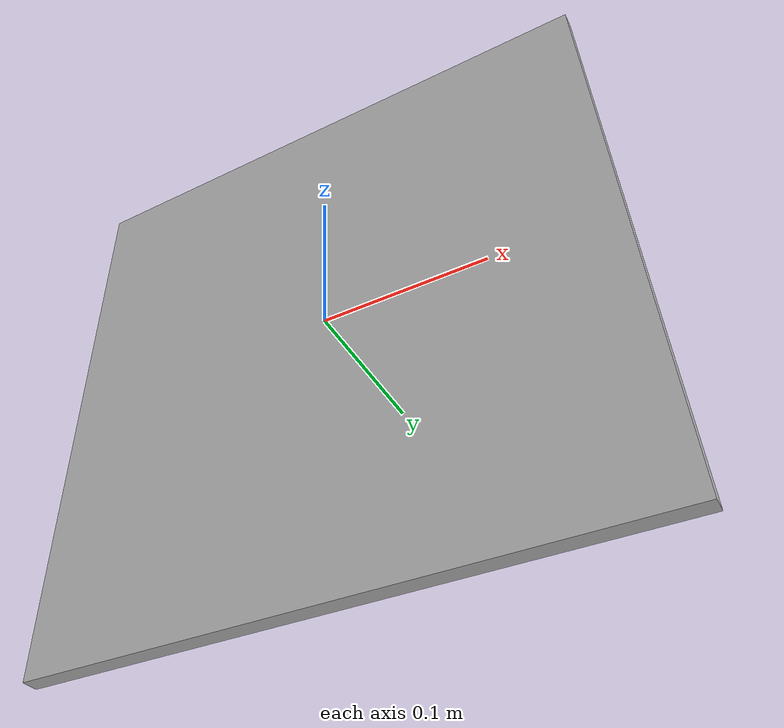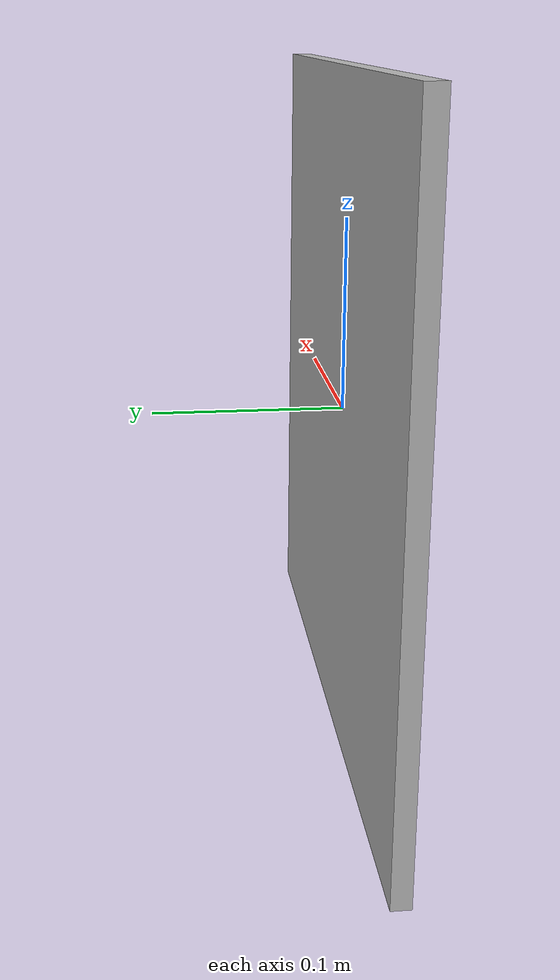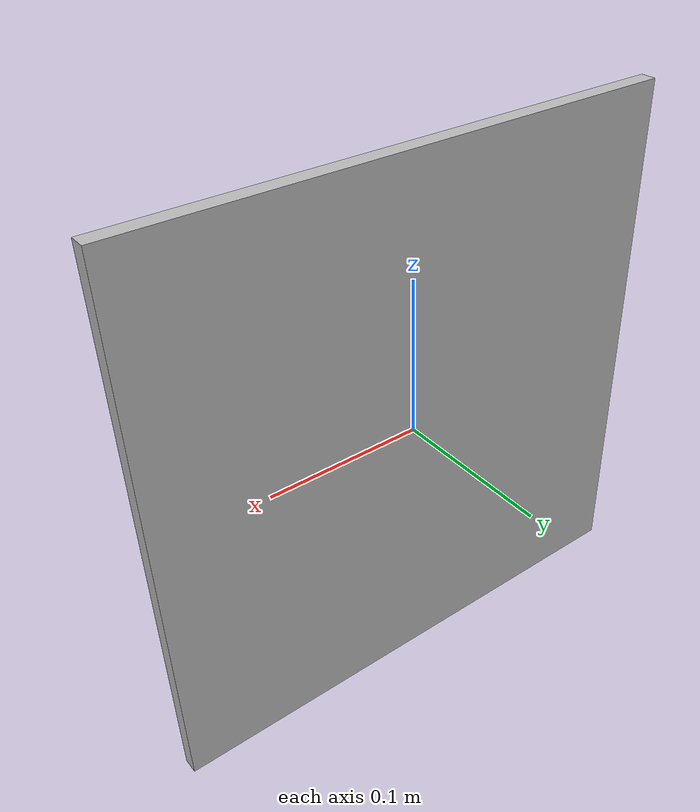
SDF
<?xml version="1.0"?>
<sdf version="1.6">
  <model name="qr_information_desk">
    <static>true</static>
    <link name="link">
      <visual name="visual">
        <pose>0 0 0 0 0 0</pose>
        <geometry>
          <box>
            <size>0.35 0.01 0.35</size>
          </box>
        </geometry>
        <material>
          <script>
            <uri>model://qr_information_desk/materials/scripts</uri>
            <uri>model://qr_information_desk/materials/textures</uri>
            <name>QR/InformationDesk</name>
          </script>
        </material>
      </visual>
      <collision name="collision">
        <geometry>
          <box>
            <size>0.35 0.01 0.35</size>
          </box>
        </geometry>
      </collision>
    </link>
  </model>
</sdf>
